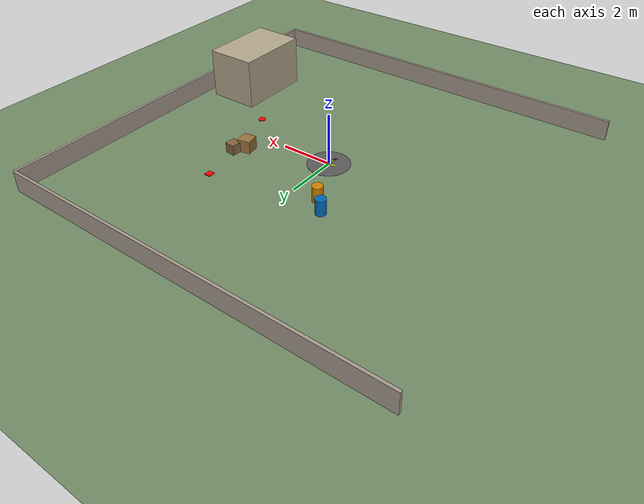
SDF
<sdf version="1.8">
 <world name="lmm_world">
  <model name="ground_plane">
   <static>true</static>
   <link name="link">
    <collision name="collision"><geometry><plane><normal>0 0 1</normal></plane></geometry></collision>
    <visual name="visual">
     <geometry><plane><normal>0 0 1</normal><size>100 100</size></plane></geometry>
     <material><ambient>0.4 0.5 0.35 1</ambient><diffuse>0.45 0.55 0.4 1</diffuse></material>
    </visual>
   </link>
  </model>
  <model name="building1">
   <static>true</static>
   <pose>6 -3 1 0 0 0</pose>
   <link name="link">
    <visual name="v">
     <geometry><box><size>2 3 2</size></box></geometry>
     <material><ambient>0.6 0.55 0.45 1</ambient><diffuse>0.7 0.65 0.55 1</diffuse></material>
    </visual>
    <collision name="c"><geometry><box><size>2 3 2</size></box></geometry></collision>
   </link>
  </model>
  <model name="wall_north">
   <static>true</static>
   <pose>0 7.5 0.4 0 0 0</pose>
   <link name="link">
    <visual name="v">
     <geometry><box><size>15 0.1 0.8</size></box></geometry>
     <material><ambient>0.55 0.5 0.45 1</ambient><diffuse>0.65 0.6 0.55 1</diffuse></material>
    </visual>
    <collision name="c"><geometry><box><size>10 0.1 0.8</size></box></geometry></collision>
   </link>
  </model>
  <model name="wall_south">
   <static>true</static>
   <pose>0 -7.5 0.4 0 0 0</pose>
   <link name="link">
    <visual name="v">
     <geometry><box><size>15 0.1 0.8</size></box></geometry>
     <material><ambient>0.55 0.5 0.45 1</ambient><diffuse>0.65 0.6 0.55 1</diffuse></material>
    </visual>
    <collision name="c"><geometry><box><size>10 0.1 0.8</size></box></geometry></collision>
   </link>
  </model>
  <model name="wall_east">
   <static>true</static>
   <pose>7.5 0 0.4 0 0 0</pose>
   <link name="link">
    <visual name="v">
     <geometry><box><size>0.1 15 0.8</size></box></geometry>
     <material><ambient>0.55 0.5 0.45 1</ambient><diffuse>0.65 0.6 0.55 1</diffuse></material>
    </visual>
    <collision name="c"><geometry><box><size>0.1 10 0.8</size></box></geometry></collision>
   </link>
  </model>
  <model name="barrel1">
   <static>true</static>
   <pose>-1 2 0.3 0 0 0</pose>
   <link name="link">
    <visual name="v">
     <geometry><cylinder><radius>0.2</radius><length>0.6</length></cylinder></geometry>
     <material><ambient>0.7 0.4 0.0 1</ambient><diffuse>0.8 0.5 0.0 1</diffuse></material>
    </visual>
    <collision name="c">
     <geometry><cylinder><radius>0.2</radius><length>0.6</length></cylinder></geometry>
    </collision>
   </link>
  </model>
  <model name="barrel2">
   <static>true</static>
   <pose>-1.5 2.5 0.3 0 0 0</pose>
   <link name="link">
    <visual name="v">
     <geometry><cylinder><radius>0.2</radius><length>0.6</length></cylinder></geometry>
     <material><ambient>0.0 0.3 0.6 1</ambient><diffuse>0.0 0.4 0.7 1</diffuse></material>
    </visual>
    <collision name="c">
     <geometry><cylinder><radius>0.2</radius><length>0.6</length></cylinder></geometry>
    </collision>
   </link>
  </model>
  <model name="box1">
   <static>true</static>
   <pose>3 1 0.25 0 0 0.2</pose>
   <link name="link">
    <visual name="v">
     <geometry><box><size>0.5 0.5 0.5</size></box></geometry>
     <material><ambient>0.5 0.35 0.15 1</ambient><diffuse>0.6 0.45 0.25 1</diffuse></material>
    </visual>
    <collision name="c"><geometry><box><size>0.5 0.5 0.5</size></box></geometry></collision>
   </link>
  </model>
  <model name="box2">
   <static>true</static>
   <pose>3.3 1.4 0.2 0 0 -0.1</pose>
   <link name="link">
    <visual name="v">
     <geometry><box><size>0.4 0.4 0.4</size></box></geometry>
     <material><ambient>0.4 0.3 0.15 1</ambient><diffuse>0.5 0.4 0.25 1</diffuse></material>
    </visual>
    <collision name="c"><geometry><box><size>0.4 0.4 0.4</size></box></geometry></collision>
   </link>
  </model>
  <model name="helipad">
   <static>true</static>
   <pose>0 0 0.005 0 0 0</pose>
   <link name="link">
    <visual name="pad">
     <geometry><cylinder><radius>0.8</radius><length>0.01</length></cylinder></geometry>
     <material><ambient>0.3 0.3 0.3 1</ambient><diffuse>0.35 0.35 0.35 1</diffuse></material>
    </visual>
    <visual name="h_line1">
     <pose>0 0 0.006 0 0 0</pose>
     <geometry><box><size>0.6 0.08 0.002</size></box></geometry>
     <material><ambient>0.9 0.9 0.0 1</ambient><diffuse>1.0 1.0 0.0 1</diffuse></material>
    </visual>
    <visual name="h_line2">
     <pose>0 0 0.006 0 0 1.5708</pose>
     <geometry><box><size>0.6 0.08 0.002</size></box></geometry>
     <material><ambient>0.9 0.9 0.0 1</ambient><diffuse>1.0 1.0 0.0 1</diffuse></material>
    </visual>
   </link>
  </model>
  <model name="red_circle">
   <pose>4 -1 0.015 0 0 0</pose>
   <link name="link">
    <inertial>
     <mass>0.05</mass>
     <inertia><ixx>0.0001</ixx><ixy>0</ixy><ixz>0</ixz><iyy>0.0001</iyy><iyz>0</iyz><izz>0.0001</izz></inertia>
    </inertial>
    <visual name="visual">
     <geometry><cylinder><radius>0.14</radius><length>0.03</length></cylinder></geometry>
     <material><ambient>1.0 0.0 0.0 1</ambient><diffuse>1.0 0.0 0.0 1</diffuse></material>
    </visual>
    <collision name="collision">
     <geometry><cylinder><radius>0.14</radius><length>0.03</length></cylinder></geometry>
    </collision>
   </link>
  </model>
  <model name="red_square">
   <pose>3 3 0.015 0 0 0</pose>
   <link name="link">
    <inertial>
     <mass>0.05</mass>
     <inertia><ixx>0.0001</ixx><ixy>0</ixy><ixz>0</ixz><iyy>0.0001</iyy><iyz>0</iyz><izz>0.0001</izz></inertia>
    </inertial>
    <visual name="visual">
     <geometry><box><size>0.25 0.25 0.03</size></box></geometry>
     <material><ambient>1.0 0.0 0.0 1</ambient><diffuse>1.0 0.0 0.0 1</diffuse></material>
    </visual>
    <collision name="collision"><geometry><box><size>0.25 0.25 0.03</size></box></geometry></collision>
   </link>
  </model>
  <model name="drone">
   <static>true</static>
   <pose>0 0 0.15 0 0 0</pose>
   <link name="body">
    <visual name="center">
     <geometry><cylinder><radius>0.06</radius><length>0.04</length></cylinder></geometry>
     <material><ambient>0.15 0.15 0.15 1</ambient><diffuse>0.2 0.2 0.2 1</diffuse></material>
    </visual>
    <visual name="top_cover">
     <pose>0 0 0.025 0 0 0</pose>
     <geometry><box><size>0.08 0.08 0.015</size></box></geometry>
     <material><ambient>0.0 0.4 0.0 1</ambient><diffuse>0.0 0.5 0.0 1</diffuse></material>
    </visual>
    <visual name="gps">
     <pose>0 0 0.045 0 0 0</pose>
     <geometry><cylinder><radius>0.015</radius><length>0.02</length></cylinder></geometry>
     <material><ambient>0.6 0.6 0.6 1</ambient><diffuse>0.7 0.7 0.7 1</diffuse></material>
    </visual>
    <visual name="battery">
     <pose>0 0 -0.03 0 0 0</pose>
     <geometry><box><size>0.06 0.03 0.02</size></box></geometry>
     <material><ambient>0.1 0.1 0.4 1</ambient><diffuse>0.1 0.1 0.5 1</diffuse></material>
    </visual>
    <visual name="arm_fr">
     <pose>0.1 -0.1 0 0 0 -0.785</pose>
     <geometry><box><size>0.22 0.018 0.012</size></box></geometry>
     <material><ambient>0.7 0.7 0.7 1</ambient><diffuse>0.8 0.8 0.8 1</diffuse></material>
    </visual>
    <visual name="arm_fl">
     <pose>0.1 0.1 0 0 0 0.785</pose>
     <geometry><box><size>0.22 0.018 0.012</size></box></geometry>
     <material><ambient>0.7 0.7 0.7 1</ambient><diffuse>0.8 0.8 0.8 1</diffuse></material>
    </visual>
    <visual name="arm_rl">
     <pose>-0.1 0.1 0 0 0 -0.785</pose>
     <geometry><box><size>0.22 0.018 0.012</size></box></geometry>
     <material><ambient>0.1 0.1 0.1 1</ambient><diffuse>0.15 0.15 0.15 1</diffuse></material>
    </visual>
    <visual name="arm_rr">
     <pose>-0.1 -0.1 0 0 0 0.785</pose>
     <geometry><box><size>0.22 0.018 0.012</size></box></geometry>
     <material><ambient>0.1 0.1 0.1 1</ambient><diffuse>0.15 0.15 0.15 1</diffuse></material>
    </visual>
    <visual name="motor_fr">
     <pose>0.18 -0.18 0.01 0 0 0</pose>
     <geometry><cylinder><radius>0.018</radius><length>0.025</length></cylinder></geometry>
     <material><ambient>0.3 0.3 0.3 1</ambient><diffuse>0.4 0.4 0.4 1</diffuse></material>
    </visual>
    <visual name="motor_fl">
     <pose>0.18 0.18 0.01 0 0 0</pose>
     <geometry><cylinder><radius>0.018</radius><length>0.025</length></cylinder></geometry>
     <material><ambient>0.3 0.3 0.3 1</ambient><diffuse>0.4 0.4 0.4 1</diffuse></material>
    </visual>
    <visual name="motor_rl">
     <pose>-0.18 0.18 0.01 0 0 0</pose>
     <geometry><cylinder><radius>0.018</radius><length>0.025</length></cylinder></geometry>
     <material><ambient>0.3 0.3 0.3 1</ambient><diffuse>0.4 0.4 0.4 1</diffuse></material>
    </visual>
    <visual name="motor_rr">
     <pose>-0.18 -0.18 0.01 0 0 0</pose>
     <geometry><cylinder><radius>0.018</radius><length>0.025</length></cylinder></geometry>
     <material><ambient>0.3 0.3 0.3 1</ambient><diffuse>0.4 0.4 0.4 1</diffuse></material>
    </visual>
    <visual name="prop_fr">
     <pose>0.18 -0.18 0.025 0 0 0</pose>
     <geometry><cylinder><radius>0.07</radius><length>0.003</length></cylinder></geometry>
     <material><ambient>0.3 0.3 0.3 0.7</ambient><diffuse>0.4 0.4 0.4 0.7</diffuse></material>
    </visual>
    <visual name="prop_fl">
     <pose>0.18 0.18 0.025 0 0 0</pose>
     <geometry><cylinder><radius>0.07</radius><length>0.003</length></cylinder></geometry>
     <material><ambient>0.3 0.3 0.3 0.7</ambient><diffuse>0.4 0.4 0.4 0.7</diffuse></material>
    </visual>
    <visual name="prop_rl">
     <pose>-0.18 0.18 0.025 0 0 0</pose>
     <geometry><cylinder><radius>0.07</radius><length>0.003</length></cylinder></geometry>
     <material><ambient>0.3 0.3 0.3 0.7</ambient><diffuse>0.4 0.4 0.4 0.7</diffuse></material>
    </visual>
    <visual name="prop_rr">
     <pose>-0.18 -0.18 0.025 0 0 0</pose>
     <geometry><cylinder><radius>0.07</radius><length>0.003</length></cylinder></geometry>
     <material><ambient>0.3 0.3 0.3 0.7</ambient><diffuse>0.4 0.4 0.4 0.7</diffuse></material>
    </visual>
    <visual name="leg_fr">
     <pose>0.08 -0.06 -0.05 0 0 0</pose>
     <geometry><box><size>0.008 0.008 0.07</size></box></geometry>
     <material><ambient>0.3 0.3 0.3 1</ambient></material>
    </visual>
    <visual name="leg_fl">
     <pose>0.08 0.06 -0.05 0 0 0</pose>
     <geometry><box><size>0.008 0.008 0.07</size></box></geometry>
     <material><ambient>0.3 0.3 0.3 1</ambient></material>
    </visual>
    <visual name="leg_rl">
     <pose>-0.08 0.06 -0.05 0 0 0</pose>
     <geometry><box><size>0.008 0.008 0.07</size></box></geometry>
     <material><ambient>0.3 0.3 0.3 1</ambient></material>
    </visual>
    <visual name="leg_rr">
     <pose>-0.08 -0.06 -0.05 0 0 0</pose>
     <geometry><box><size>0.008 0.008 0.07</size></box></geometry>
     <material><ambient>0.3 0.3 0.3 1</ambient></material>
    </visual>
    <visual name="skid_l">
     <pose>0 0.06 -0.085 0 0 0</pose>
     <geometry><box><size>0.22 0.008 0.008</size></box></geometry>
     <material><ambient>0.3 0.3 0.3 1</ambient></material>
    </visual>
    <visual name="skid_r">
     <pose>0 -0.06 -0.085 0 0 0</pose>
     <geometry><box><size>0.22 0.008 0.008</size></box></geometry>
     <material><ambient>0.3 0.3 0.3 1</ambient></material>
    </visual>
    <visual name="cam">
     <pose>0.04 0 -0.03 0 0.3 0</pose>
     <geometry><box><size>0.025 0.03 0.02</size></box></geometry>
     <material><ambient>0.05 0.05 0.05 1</ambient><diffuse>0.1 0.1 0.1 1</diffuse></material>
    </visual>
    <visual name="cam_lens">
     <pose>0.052 0 -0.025 0 0.3 0</pose>
     <geometry><cylinder><radius>0.008</radius><length>0.008</length></cylinder></geometry>
     <material><ambient>0.0 0.0 0.2 1</ambient><diffuse>0.0 0.0 0.3 1</diffuse></material>
    </visual>
    <sensor name="drone_camera" type="camera">
     <pose>0 0 -0.04 0 1.5708 0</pose>
     <always_on>1</always_on>
     <update_rate>15</update_rate>
     <camera>
      <horizontal_fov>1.8</horizontal_fov>
      <image><width>320</width><height>240</height></image>
      <clip><near>0.1</near><far>100</far></clip>
     </camera>
     <topic>drone/camera</topic>
    </sensor>
    <sensor name="drone_imu" type="imu">
     <always_on>1</always_on>
     <update_rate>50</update_rate>
     <topic>drone/imu</topic>
    </sensor>
   </link>
  </model>
 </world>
</sdf>
